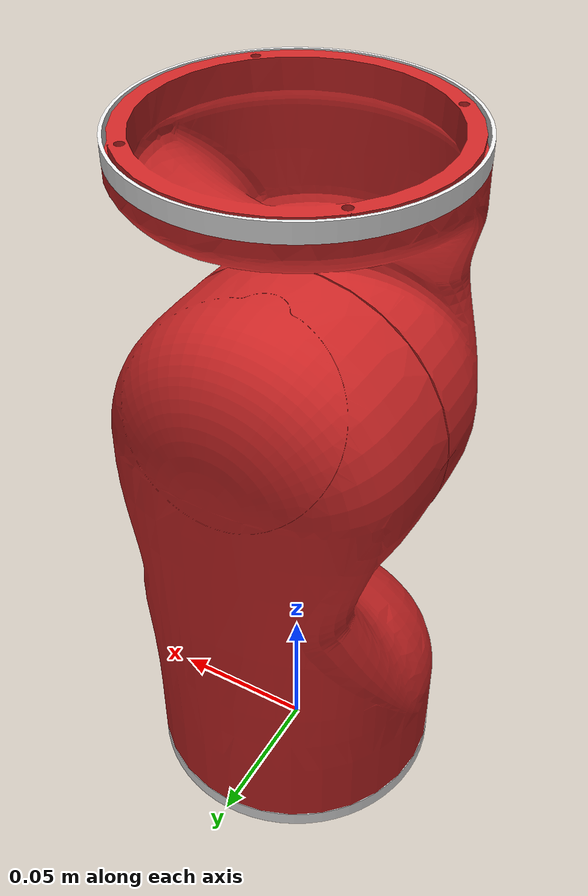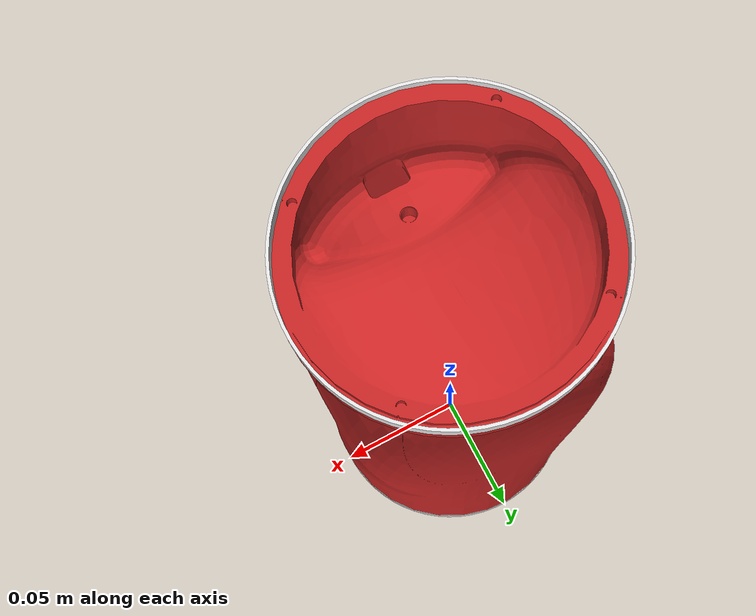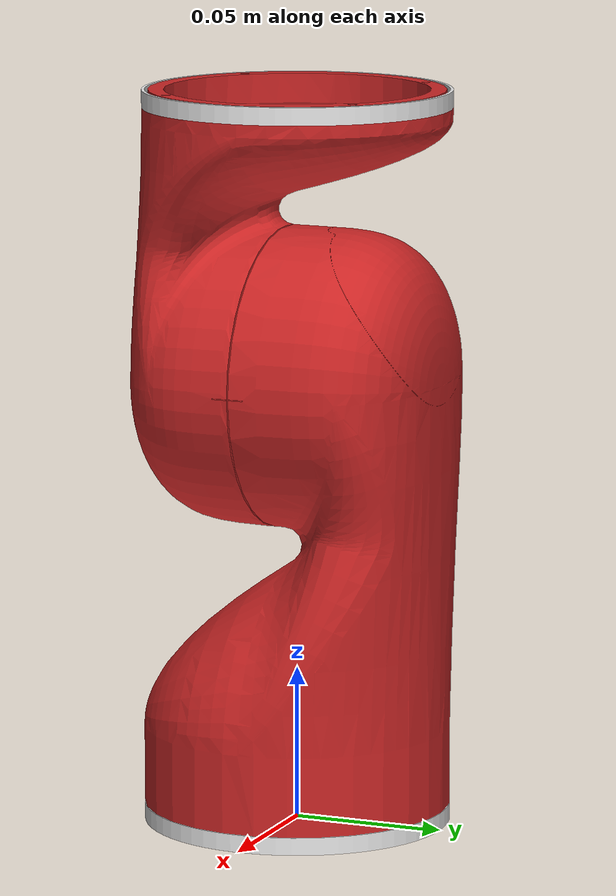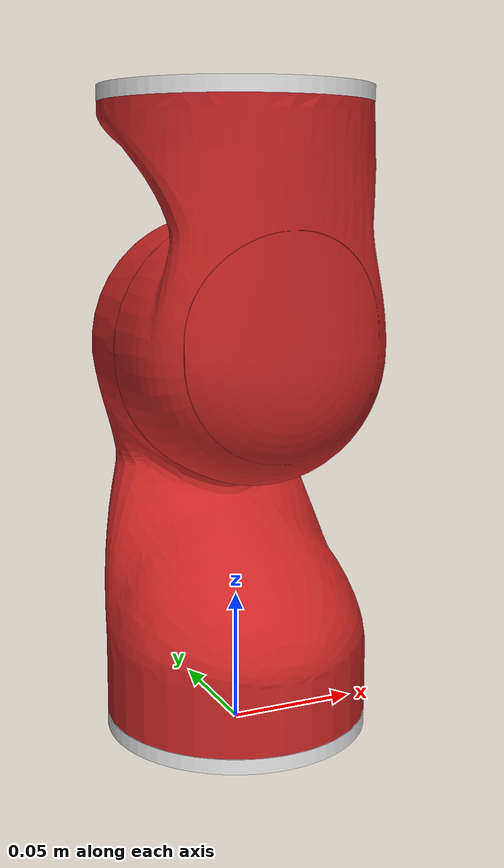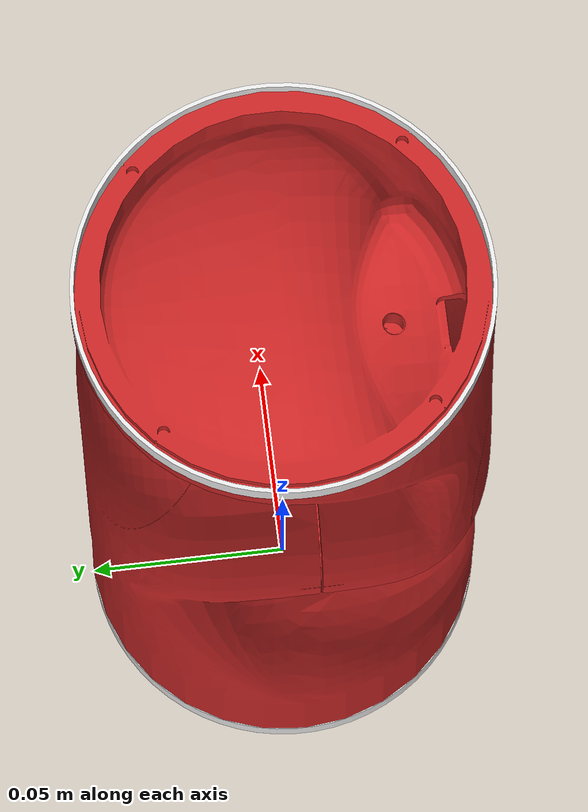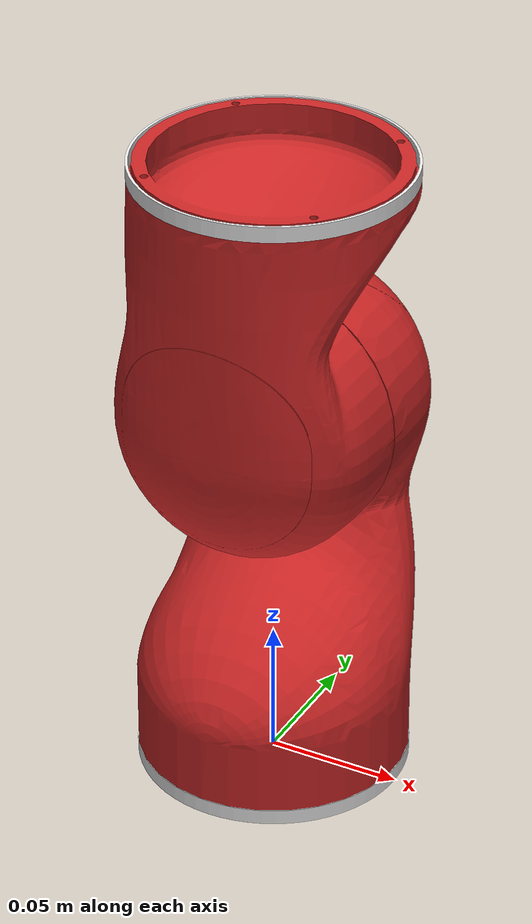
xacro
<?xml version="1.0"?>
<robot xmlns:xacro="http://www.ros.org/wiki/xacro" name="T_module">

<!-- materials for visualization -->
  <xacro:include filename="$(find mr_description)/urdf/materials.urdf.xacro" />

  <!-- T Module -->
  <xacro:include filename="$(find mr_description)/urdf/T_module/T_module.urdf.xacro" />

<!-- Now we can start using the macros included above to define the actual youbot -->

  <!-- foot for module arm-->
  <link name="base_link"/>

  <xacro:T_module name="T" parent="base_link">
    <origin xyz="0 0 0" rpy="0 0 0" />
  </xacro:T_module>

</robot>

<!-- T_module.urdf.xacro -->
<robot xmlns:xacro="http://www.ros.org/wiki/xacro">
<xacro:property name="pi" value="3.1415926535897931" />
<!--definition of default_inertial -->
<xacro:macro name="T_module" params="parent name *origin">

<!-- joint between base_link and Lockring_Link -->
  <joint name="${name}_joint_0" type="fixed" >
    <insert_block name="origin" />
    <parent link="${parent}" />
    <child link="${name}_Lr_Link_0" />
  </joint>

<!--the Lockring_Link in T module-->
  <link name="${name}_Lr_Link_0">
    <inertial>
      <origin xyz="2.9038E-18 -2.1866E-18 0.0015" rpy="0 0 0" />
      <mass   value="8.4823E-05" />
      <inertia ixx="2.5447E-10" ixy="-1.2925E-27" ixz="4.3983E-28"
               iyy="2.5447E-10" iyz="3.5597E-27"  izz="3.817E-10" />
      </inertial>
    <visual>
      <origin xyz="0 0 0" rpy="0 0 0" />
      <geometry>
        <mesh filename="package://mr_description/meshes/VT_InLink.STL" />
      </geometry>
      <material name="White"/>
    </visual>
  </link>

<!-- joint between Lockring_Link and TModule_InLink -->
    <joint name="${name}_Lr_Joint_1" type="fixed">
      <origin xyz="0 0 0" rpy="0 0 0" />
      <parent link="${name}_Lr_Link_0" />
      <child  link="${name}_InLink_1" />
      <axis   xyz="0 0 0" />
      <limit  lower="0" upper="0"  effort="0"   velocity="0" />
    </joint>

<!--the TModule_InLink in T module-->
  <link name="${name}_InLink_1">
    <inertial>
      <origin xyz="4.5327E-06 0.014724 0.10236" rpy="0 0 0" />
      <mass   value="0.8287" />
      <inertia   ixx="0.0027398"  ixy="-8.0424E-07"  ixz="-2.3991E-06"
       					 iyy="0.0028894"  iyz="0.00016467"   izz="0.00086451" />
    </inertial>
    <visual>
      <origin   xyz="0 0 0"  rpy="0 0 0" />
      <geometry>
        <mesh   filename="package://mr_description/meshes/T_InLink.STL" />
      </geometry>
      <material name="Red"/>
    </visual>
    <collision>
	<origin   xyz="0 0 0.04"  rpy="0 0 0" />
      <geometry>
	<cylinder radius="0.05" length="0.07" />
      </geometry>
    </collision>
  </link>

<!-- joint between TModule_InLink and TModule_OutLink -->
  <joint  name="${name}_Joint"  type="continuous">
    <origin  xyz="0 0 0.1466"  rpy="-1.5708 1.2251E-16 -3.1416" />
    <parent  link="${name}_InLink_1" />
    <child   link="${name}_OutLink_2" />
    <axis   xyz="0 0 1" />
  </joint>

  <!--    test reduction ratio-->
  <transmission name="simple_trans">
    <type>transmission_interface/SimpleTransmission</type>
    <joint name="${name}_Joint">
      <hardwareInterface>PositionJointInterface</hardwareInterface>
      <hardwareInterface>VelocityJointInterface</hardwareInterface>
    </joint>
    <actuator name="${name}_motor">
      <mechanicalReduction>480</mechanicalReduction>
      <hardwareInterface>PositionJointInterface</hardwareInterface>
      <hardwareInterface>VelocityJointInterface</hardwareInterface>
    </actuator>
  </transmission>

<!--the TModule_OutLink in T module-->
  <link  name="${name}_OutLink_2">
    <inertial>
      <origin xyz="2.0762E-05 -0.0094284 0.014486" rpy="0 0 0" />
      <mass  value="1.4322" />
      <inertia   ixx="0.0018144"  ixy="-1.0634E-06"  ixz="9.3521E-08"
      		iyy="0.0011673"  iyz="8.3209E-05"  izz="0.0023046" />
    </inertial>
    <visual>
      <origin  xyz="0 0 0"  rpy="0 0 0" />
      <geometry>
        <mesh  filename="package://mr_description/meshes/T_OutLink.STL" />
      </geometry>
      <material  name="Red"/>
    </visual>
    <collision>
          <origin  xyz="0 -0.025 0" rpy="${pi*0.5} 0 0" />
      <geometry>
      	<cylinder radius="0.05" length="0.12" />
      </geometry>
    </collision>
  </link>

<!-- joint between TModule_OutLink and Lockring_Link -->
    <joint name="${name}_Lr_Joint_3" type="fixed">
      <origin  xyz="0 -0.0934 0"  rpy="-1.5708 0 3.1416" />
      <parent link="${name}_OutLink_2" />
      <child  link="${name}_Lr_Link_3" />
      <axis   xyz="0 0 0" />
      <limit  lower="0" upper="0"  effort="0"   velocity="0" />
    </joint>

<!--the Lockring_Link in T module-->
  <link name="${name}_Lr_Link_3">
    <inertial>
      <origin xyz="-2.7136E-19 9.8046E-20 -0.0015" rpy="0 0 0" />
      <mass value="8.4823E-05" />
      <inertia ixx="2.5447E-10" ixy="0" ixz="-1.9769E-26"
               iyy="2.5447E-10" iyz="9.4423E-27" izz="3.817E-10" />
    </inertial>
    <visual>
      <origin  xyz="0 0 0"  rpy="0 0 0" />
      <geometry>
        <mesh  filename="package://mr_description/meshes/VT_OutLink.STL" />
      </geometry>
      <material name="White"/>
    </visual>
  </link>

</xacro:macro>
</robot>
